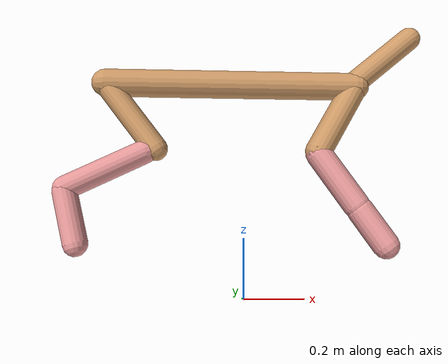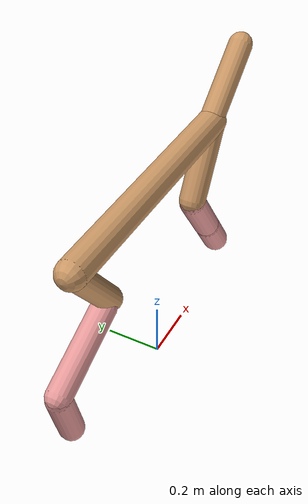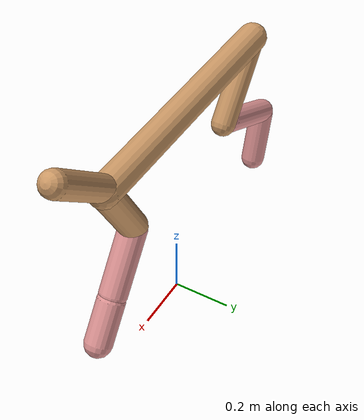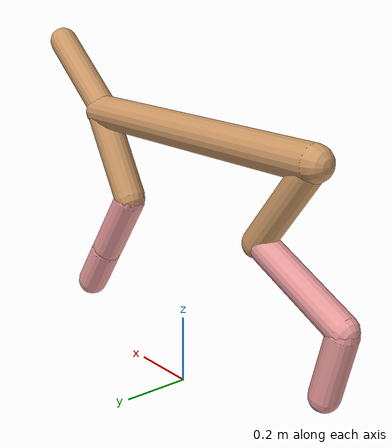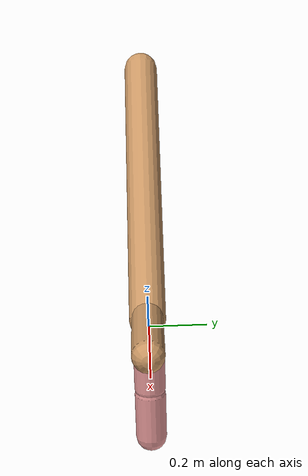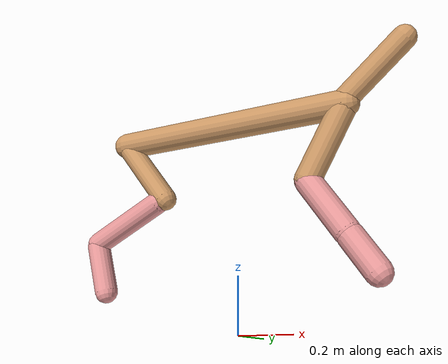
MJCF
<mujoco model="cheetah">
  <compiler angle="radian" coordinate="local" inertiafromgeom="true" settotalmass="14" />
  <default>
    <joint armature=".1" damping=".01" limited="true" solimplimit="0 .8 .03" solreflimit=".02 1" stiffness="8" />
    <geom conaffinity="0" condim="3" contype="1" friction="0.8 .1 .1" rgba="0.8 0.6 .4 1" solimp="0.0 0.8 0.01" solref="0.02 1" />
    <motor ctrllimited="true" ctrlrange="-1 1" />
  </default>
  <size nstack="300000" nuser_geom="1" />
  <option gravity="0 0 -9.81" timestep="0.01" />
  <worldbody>
    <body name="torso" pos="0.0 0.0 0.7572526996131469">
      <joint armature="0" axis="1 0 0" damping="0" limited="false" name="ignorex" pos="0 0 0" stiffness="0" type="slide" />
      <joint armature="0" axis="0 0 1" damping="0" limited="false" name="ignorez" pos="0 0 0" stiffness="0" type="slide" />
      <joint armature="0" axis="0 1 0" damping="0" limited="false" name="ignorey" pos="0 0 0" stiffness="0" type="hinge" />
      <geom fromto="-0.5 0.0 0.0 0.40819018488560466 0.0 0.0" name="torso" size="0.05024922955271239" type="capsule" />
      <geom axisangle="0 1 0 .87" name="head" pos="0.5081901848856046 0.0 0.1" size="0.04303966852693105 0.15" type="capsule" />

      <body name="bthigh" pos="-.5 0 0">
        <joint axis="0 1 0" damping="6" name="bthigh" pos="0 0 0" range="-.52 1.05" stiffness="240" type="hinge" />
        <geom axisangle="0 1 0 -3.8" name="bthigh" pos="0.10030896308825193 0.0 -0.1304016520147275" size="0.042271716856491656 0.14550673714175774" type="capsule" />
        <body name="bshin" pos="0.16061792617650386 0.0 -0.250803304029455">
          <joint axis="0 1 0" damping="4.5" name="bshin" pos="0 0 0" range="-.785 .785" stiffness="180" type="hinge" />
          <geom axisangle="0 1 0 -2.03" name="bshin" pos="-0.14046886842580456 0.0 -0.07023443421290228" rgba="0.9 0.6 0.6 1" size="0.042271716856491656 0.1505242108363011" type="capsule" />
          <body name="bfoot" pos="-0.2809377368516091 0.0 -0.14046886842580456">
            <joint axis="0 1 0" damping="3" name="bfoot" pos="0 0 0" range="-.4 .785" stiffness="120" type="hinge" />
            <geom axisangle="0 1 0 -.27" name="bfoot" pos="0.03009706341648091 0.0 -0.09731383837995494" rgba="0.9 0.6 0.6 1" size="0.042271716856491656 0.09432850545741536" type="capsule" />
            <inertial mass="10" />
          </body>
        </body>
      </body>
      <body name="fthigh" pos="0.40819018488560466 0.0 0.0">
        <joint axis="0 1 0" damping="4.5" name="fthigh" pos="0 0 0" range="-1.5 0.8" stiffness="180" type="hinge" />
        <geom axisangle="0 1 0 .52" name="fthigh" pos="-0.07401336911114764 0.0 -0.12688006133339594" size="0.04737637674892108 0.14096507222651522" type="capsule" />
        <body name="fshin" pos="-0.14802673822229528 0.0 -0.2537601226667919">
          <joint axis="0 1 0" damping="3" name="fshin" pos="0 0 0" range="-1.2 1.1" stiffness="120" type="hinge" />
          <geom axisangle="0 1 0 -.6" name="fshin" pos="0.06871675415208381 0.0 -0.09514627497980835" rgba="0.9 0.6 0.6 1" size="0.04737637674892108 0.11234810267677152" type="capsule" />
          <body name="ffoot" pos="0.13743350830416762 0.0 -0.1902925499596167">
            <joint axis="0 1 0" damping="1.5" name="ffoot" pos="0 0 0" range="-3.1 -0.3" stiffness="60" type="hinge" />
            <geom axisangle="0 1 0 -.6" name="ffoot" pos="0.04726693330097285 0.0 -0.07352634069040222" rgba="0.9 0.6 0.6 1" size="0.04737637674892108 0.07419214327711328" type="capsule" />
            <inertial mass="10" />
          </body>
        </body>
      </body>
    </body>
  </worldbody>
  <actuator>
    <motor gear="120" joint="bthigh" name="bthigh" />
    <motor gear="90" joint="bshin" name="bshin" />
    <motor gear="60" joint="bfoot" name="bfoot" />
    <motor gear="120" joint="fthigh" name="fthigh" />
    <motor gear="60" joint="fshin" name="fshin" />
    <motor gear="30" joint="ffoot" name="ffoot" />
  </actuator>
</mujoco>
